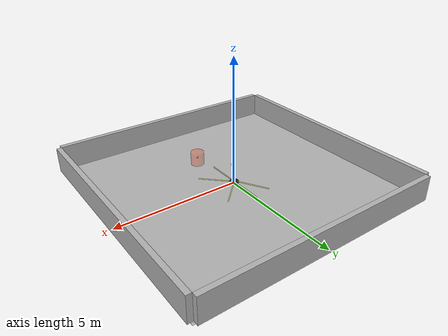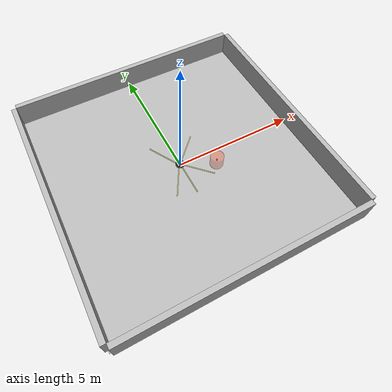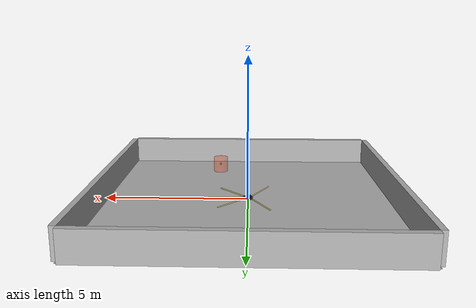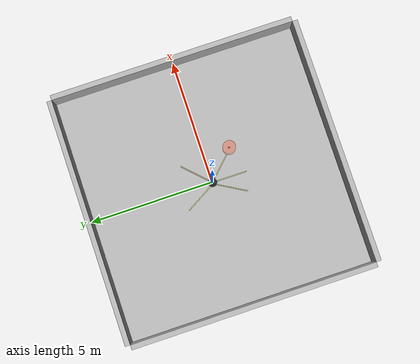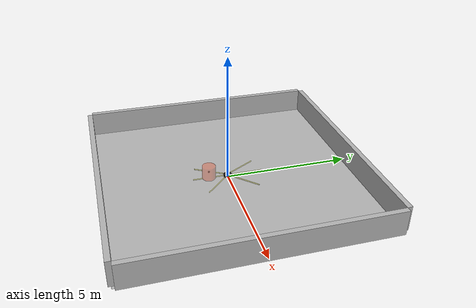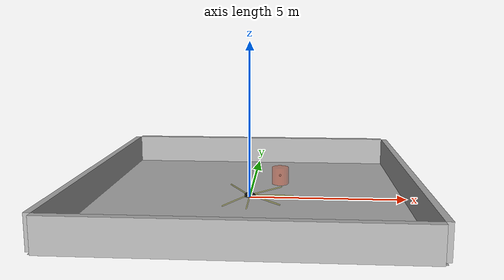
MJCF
<mujoco model="jackal_safe_navigation">
	<compiler angle="radian" meshdir="meshes/" />

    <size njmax="3000" nconmax="1000" />
    <option gravity="0 0 -9.8"/>
	<option timestep="0.002">
		<flag warmstart="enable"></flag>
	</option>

    <default>
        <geom condim="6" density="5" rgba="0.7 0.7 0.7 1" size=".05" type="sphere"/>
        <joint damping=".001"/>
        <site size="0.032" type="sphere"/>
        <velocity ctrlrange="-1 1" ctrllimited="true" forcerange="-1 1" forcelimited="true"/>
    </default>

    <asset>
        <!--Meshes-->
        <mesh name="base" file="tbot.stl" />

        <!--Textures-->
        <texture name="floor_tex"   type="2d" builtin="checker" rgb1="0.7 0.7 0.7" rgb2="0.8 0.8 0.8" width="100" height="100" />

        <!--Materials-->
        <material name="floor_mat" texture="floor_tex" shininess="0.3" texrepeat="5 5" specular="0.5" reflectance="0.2" />
        <material name="wall_mat" rgba="0.7 0.7 0.7 1" shininess="0.8" specular="0.7" reflectance="0.5" />
        <material name="bench_mat" texture="floor_tex" shininess="0.1" specular="0.5" reflectance="0.2"/>
    </asset>

	<worldbody>
		<light directional="true" ambient="0.2 0.2 0.2" diffuse="0.4 0.4 0.4" specular="0.1 0.1 0.1" castshadow="false" pos="0 0 4" dir="0 0 -1" name="light0" />

        <!-- Floor Property -->
        <geom name='floor' material="floor_mat" pos='0 0 0' size='5.0 5.0 0.1'  type='plane' condim="3"/>

        <!-- Wall Property -->
        <geom name='wall1' material="wall_mat" pos='0 5 0.5' size='4.9 0.1 0.5'  type='box' condim="6" group="2"/>
        <geom name='wall2' material="wall_mat" pos='0 -5 0.5' size='4.9 0.1 0.5'  type='box' condim="6" group="2"/>
        <geom name='wall3' material="wall_mat" pos='5 0 0.5' size='0.1 4.9 0.5'  type='box' condim="6" group="2"/>
        <geom name='wall4' material="wall_mat" pos='-5 0 0.5' size='0.1 4.9 0.5'  type='box' condim="6" group="2"/>

		<!-- camera: front view -->
		<camera mode="fixed" name="frontview" pos="3.0 0 1.85" quat="0.56 0.43 0.43 0.56"/>

		<!-- Robot -->
		<body name="robot" pos="0 0 0.06344">
            <site name="robot" pos="0 0 0"/>
            <joint type="free" name="robot" damping="0"/>

            <geom pos="0 0 0" quat="1 0 0 0" type="mesh" contype="0" conaffinity="0" group="1" rgba="0.15 0.15 0.15 1" mesh="base"/>

            <geom name="robot" size="0.21 0.155 0.092" pos="0 0 0.092" type="box" rgba="0.2 0.2 0.2 1" group="5"/>

		<body name="left" pos="0.0 0.1987795 0.0345">
		<joint type="hinge" name="left" axis="0 1 0"/>
		<geom type="cylinder" name="left" size="0.098 0.02" quat="0.707107 0.707107 0 0" group="5" condim="4"/>
		</body>
		<body name="right" pos="0.0 -0.1987795 0.0345">
		<joint type="hinge" name="right" axis="0 1 0"/>
		<geom type="cylinder" name="right" size="0.098 0.02" quat="0.707107 0.707107 0 0" group="5" condim="4"/>
		</body>

		<body name="lidar" pos="0.7 0 0.005">
		    <geom type="cylinder" size="0.02 0.7 0.02" quat="0.5 0.5 0.5 0.5" rgba="0.8 0.8 0 0.3" contype="0" conaffinity="0" mass="0.001" group="2"/>
		</body>

		<body name="lidar2" pos="0 0.7 0.005" quat="0.7071 0 0 0.7071">
		    <geom type="cylinder" size="0.02 0.7 0.02" quat="0.5 0.5 0.5 0.5" rgba="0.8 0.8 0 0.3" contype="0" conaffinity="0" mass="0.001" group="2"/>
		</body>

		<body name="lidar3" pos="0 -0.7 0.005" quat="0.7071 0 0 0.7071">
		    <geom type="cylinder" size="0.02 0.7 0.02" quat="0.5 0.5 0.5 0.5" rgba="0.8 0.8 0 0.3" contype="0" conaffinity="0" mass="0.001" group="2"/>
		</body>

		<body name="lidar4" pos="0.5 -0.5 0.005" quat="0.9239 0 0 -0.3827">
		    <geom type="cylinder" size="0.02 0.7 0.02" quat="0.5 0.5 0.5 0.5" rgba="0.8 0.8 0 0.3" contype="0" conaffinity="0" mass="0.001" group="2"/>
		</body>

		<body name="lidar5" pos="0.5 0.5 0.005" quat="0.9239 0 0 0.3827">
		    <geom type="cylinder" size="0.02 0.7 0.02" quat="0.5 0.5 0.5 0.5" rgba="0.8 0.8 0 0.3" contype="0" conaffinity="0" mass="0.001" group="2"/>
		</body>

		<body name="lidar6" pos="-0.4 -0.6 0.005" quat="0.8660254037844386 0.0 0.0 0.5000000000000001">
		    <geom type="cylinder" size="0.02 0.7 0.02" quat="0.5 0.5 0.5 0.5" rgba="0.8 0.8 0 0.3" contype="0" conaffinity="0" mass="0.001" group="2"/>
		</body>

		<body name="lidar7" pos="-0.4 0.6 0.005" quat="-0.8660254037844386 0.0 0.0 0.5000000000000001">
		    <geom type="cylinder" size="0.02 0.7 0.02" quat="0.5 0.5 0.5 0.5" rgba="0.8 0.8 0 0.3" contype="0" conaffinity="0" mass="0.001" group="2"/>
		</body>

            <body name="front" pos="0.131 0 -0.0155">
                <joint name="front" type="ball"/>
                <geom name="front" size="0.048" group="5"/>
            </body>
            <body name="rear" pos="-0.131 0 -0.0155">
                <joint name="rear" type="ball"/>
                <geom name="rear" size="0.048" group="5"/>
            </body>
		</body>

        <!-- Hazard -->

        <!-- goal -->
        <body name="goal" pos="1.0 -1.0 1.0">
            <site name="goal" pos="0 0 0"/>
            <joint type="free" name="goal" frictionloss="0" damping="0" />
            <geom type="cylinder" size="0.25 0.25 0.25" contype="0" conaffinity="0" group="1" rgba="1 0.2 0 0.3" mass="0.1"/>
        </body>

	</worldbody>

    <sensor>
        <!-- Used for observation -->
        <accelerometer site="robot" name="accelerometer"/>
        <velocimeter site="robot" name="velocimeter"/>
        <gyro site="robot" name="gyro"/>
    </sensor>

    <!--ACTUATORS-->
    <actuator>

        <motor gear="0.3 0 0 0 0 0" joint="left" name="left"/>
        <motor gear="0.3 0 0 0 0 0" joint="right" name="right"/>
    </actuator>
</mujoco>
